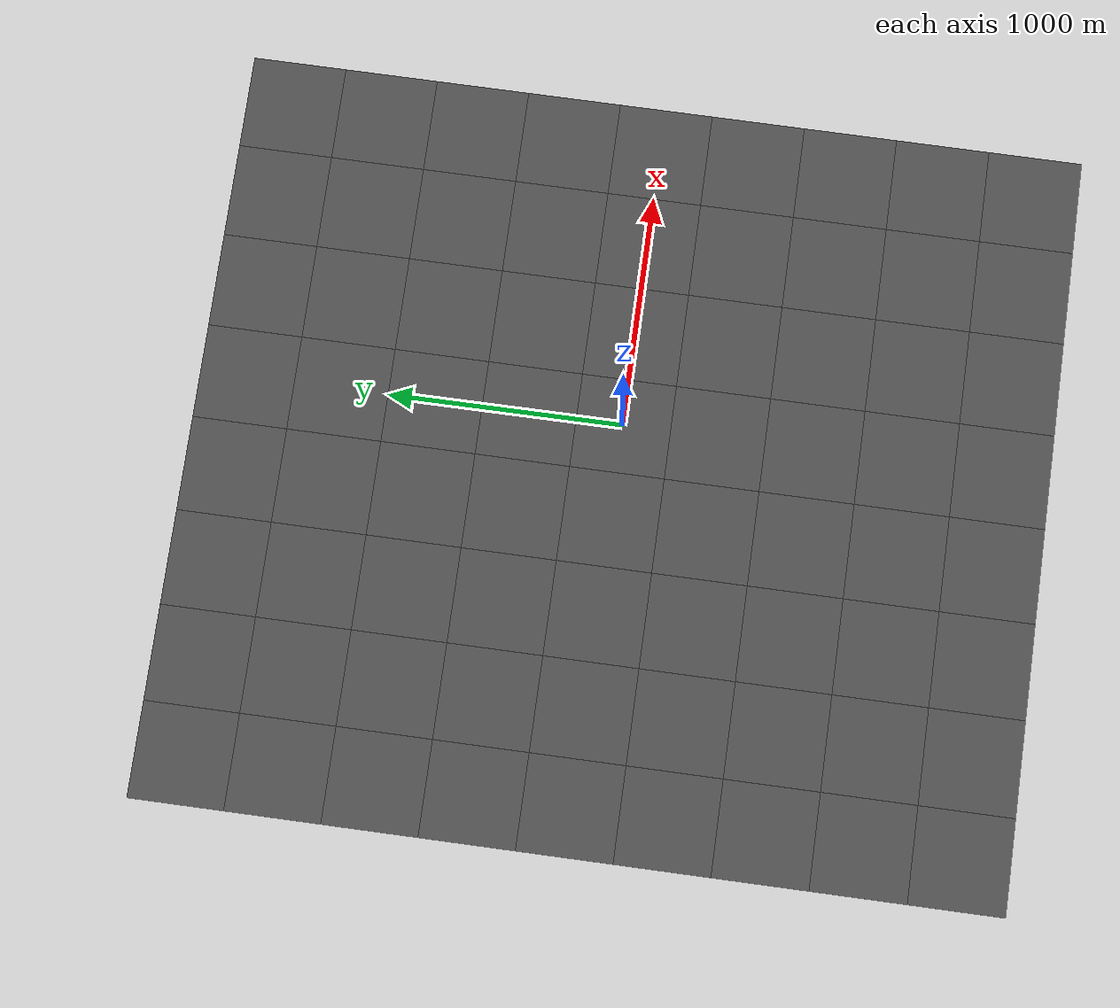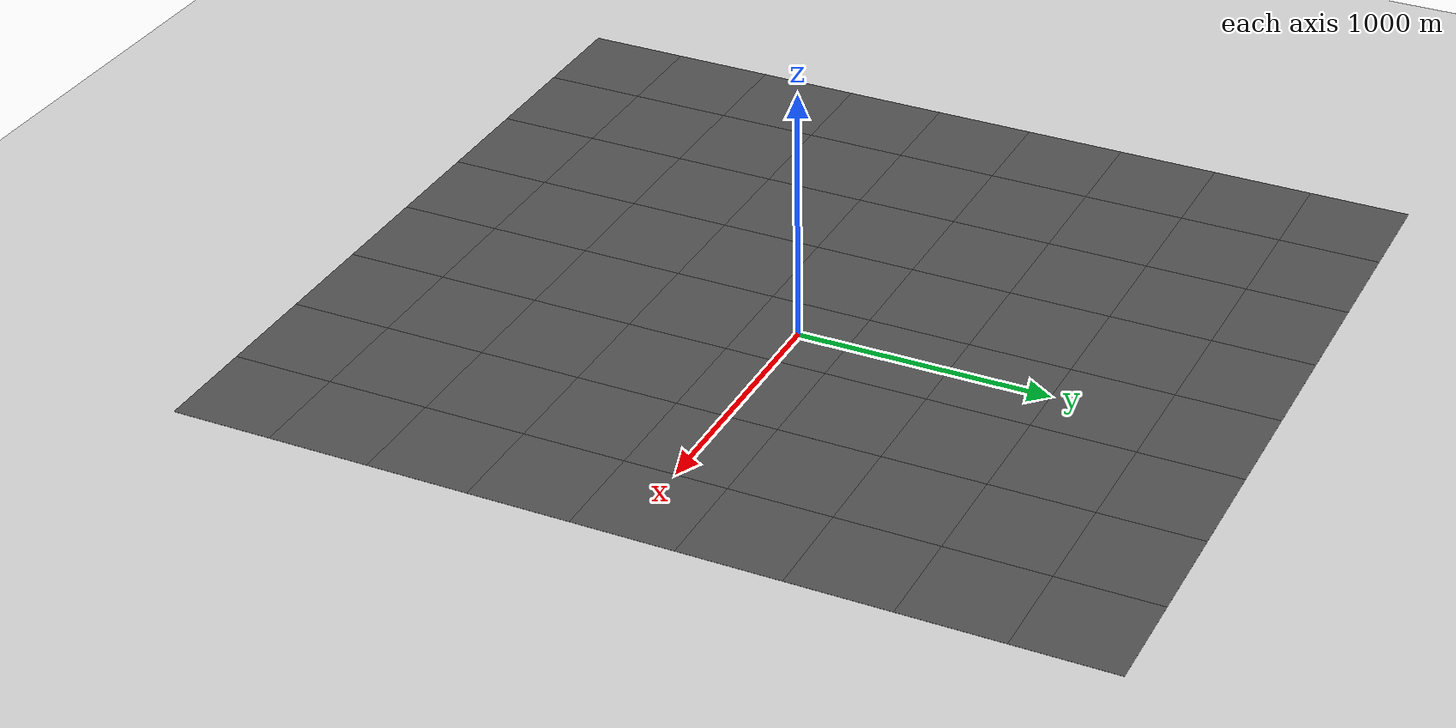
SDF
<sdf version="1.4">
 <world name="default">
  <light name="sun" type="directional">
   <pose>0 0 10 0 -0 0</pose>
   <diffuse>0.8 0.8 0.8 1</diffuse>
   <specular>0.2 0.2 0.2 1</specular>
   <attenuation>
    <range>1000</range>
    <constant>0.9</constant>
    <linear>0.01</linear>
    <quadratic>0.001</quadratic>
   </attenuation>
   <direction>-0.5 0.1 -0.9</direction>
  </light>
  <model name="ground_plane">
   <static>1</static>
   <link name="link">
    <collision name="collision">
     <geometry><plane><normal>0 0 1</normal><size>100 100</size></plane></geometry>
     <surface><friction><ode><mu>100</mu><mu2>50</mu2></ode></friction></surface>
    </collision>
    <visual name="visual">
     <cast_shadows>0</cast_shadows>
     <geometry><plane><normal>0 0 1</normal><size>100 100</size></plane></geometry>
     <material>
      <script><uri>file://media/materials/scripts/gazebo.material</uri><name>Gazebo/Grey</name></script>
     </material>
    </visual>
    <velocity_decay><linear>0</linear><angular>0</angular></velocity_decay>
   </link>
  </model>
  <physics type="ode">
   <max_step_size>0.01</max_step_size>
   <real_time_factor>1</real_time_factor>
   <real_time_update_rate>100</real_time_update_rate>
   <gravity>0 0 -9.8</gravity>
  </physics>
  <scene><ambient>0.4 0.4 0.4 1</ambient><background>0.7 0.7 0.7 1</background><shadows>1</shadows></scene>
  <spherical_coordinates>
   <surface_model>EARTH_WGS84</surface_model>
   <latitude_deg>0</latitude_deg>
   <longitude_deg>0</longitude_deg>
   <elevation>0</elevation>
   <heading_deg>0</heading_deg>
  </spherical_coordinates>
  <model name="asphalt_plane_1">
   <static>1</static>
   <link name="link">
    <collision name="collision">
     <geometry><box><size>400 400 0.6</size></box></geometry>
     <surface><friction><ode><mu>10000</mu><mu2>5000</mu2></ode></friction></surface>
    </collision>
    <visual name="visual">
     <cast_shadows>0</cast_shadows>
     <geometry><box><size>400 400 0.6</size></box></geometry>
     <material>
      <script>
       <uri>model://asphalt_plane/materials/scripts</uri>
       <uri>model://asphalt_plane/materials/textures</uri>
       <name>vrc/asphalt</name>
      </script>
     </material>
    </visual>
    <velocity_decay><linear>0</linear><angular>0</angular></velocity_decay>
   </link>
   <pose>-1600 -1600 0 0 -0 0</pose>
  </model>
  <model name="asphalt_plane_2">
   <static>1</static>
   <link name="link">
    <collision name="collision">
     <geometry><box><size>400 400 0.6</size></box></geometry>
     <surface><friction><ode><mu>10000</mu><mu2>5000</mu2></ode></friction></surface>
    </collision>
    <visual name="visual">
     <cast_shadows>0</cast_shadows>
     <geometry><box><size>400 400 0.6</size></box></geometry>
     <material>
      <script>
       <uri>model://asphalt_plane/materials/scripts</uri>
       <uri>model://asphalt_plane/materials/textures</uri>
       <name>vrc/asphalt</name>
      </script>
     </material>
    </visual>
    <velocity_decay><linear>0</linear><angular>0</angular></velocity_decay>
   </link>
   <pose>-1600 -1200 0 0 -0 0</pose>
  </model>
  <model name="asphalt_plane_3">
   <static>1</static>
   <link name="link">
    <collision name="collision">
     <geometry><box><size>400 400 0.6</size></box></geometry>
     <surface><friction><ode><mu>10000</mu><mu2>5000</mu2></ode></friction></surface>
    </collision>
    <visual name="visual">
     <cast_shadows>0</cast_shadows>
     <geometry><box><size>400 400 0.6</size></box></geometry>
     <material>
      <script>
       <uri>model://asphalt_plane/materials/scripts</uri>
       <uri>model://asphalt_plane/materials/textures</uri>
       <name>vrc/asphalt</name>
      </script>
     </material>
    </visual>
    <velocity_decay><linear>0</linear><angular>0</angular></velocity_decay>
   </link>
   <pose>-1600 -800 0 0 -0 0</pose>
  </model>
  <model name="asphalt_plane_4">
   <static>1</static>
   <link name="link">
    <collision name="collision">
     <geometry><box><size>400 400 0.6</size></box></geometry>
     <surface><friction><ode><mu>10000</mu><mu2>5000</mu2></ode></friction></surface>
    </collision>
    <visual name="visual">
     <cast_shadows>0</cast_shadows>
     <geometry><box><size>400 400 0.6</size></box></geometry>
     <material>
      <script>
       <uri>model://asphalt_plane/materials/scripts</uri>
       <uri>model://asphalt_plane/materials/textures</uri>
       <name>vrc/asphalt</name>
      </script>
     </material>
    </visual>
    <velocity_decay><linear>0</linear><angular>0</angular></velocity_decay>
   </link>
   <pose>-1600 -400 0 0 -0 0</pose>
  </model>
  <model name="asphalt_plane_5">
   <static>1</static>
   <link name="link">
    <collision name="collision">
     <geometry><box><size>400 400 0.6</size></box></geometry>
     <surface><friction><ode><mu>10000</mu><mu2>5000</mu2></ode></friction></surface>
    </collision>
    <visual name="visual">
     <cast_shadows>0</cast_shadows>
     <geometry><box><size>400 400 0.6</size></box></geometry>
     <material>
      <script>
       <uri>model://asphalt_plane/materials/scripts</uri>
       <uri>model://asphalt_plane/materials/textures</uri>
       <name>vrc/asphalt</name>
      </script>
     </material>
    </visual>
    <velocity_decay><linear>0</linear><angular>0</angular></velocity_decay>
   </link>
   <pose>-1600 0 0 0 -0 0</pose>
  </model>
  <model name="asphalt_plane_6">
   <static>1</static>
   <link name="link">
    <collision name="collision">
     <geometry><box><size>400 400 0.6</size></box></geometry>
     <surface><friction><ode><mu>10000</mu><mu2>5000</mu2></ode></friction></surface>
    </collision>
    <visual name="visual">
     <cast_shadows>0</cast_shadows>
     <geometry><box><size>400 400 0.6</size></box></geometry>
     <material>
      <script>
       <uri>model://asphalt_plane/materials/scripts</uri>
       <uri>model://asphalt_plane/materials/textures</uri>
       <name>vrc/asphalt</name>
      </script>
     </material>
    </visual>
    <velocity_decay><linear>0</linear><angular>0</angular></velocity_decay>
   </link>
   <pose>-1600 400 0 0 -0 0</pose>
  </model>
  <model name="asphalt_plane_7">
   <static>1</static>
   <link name="link">
    <collision name="collision">
     <geometry><box><size>400 400 0.6</size></box></geometry>
     <surface><friction><ode><mu>10000</mu><mu2>5000</mu2></ode></friction></surface>
    </collision>
    <visual name="visual">
     <cast_shadows>0</cast_shadows>
     <geometry><box><size>400 400 0.6</size></box></geometry>
     <material>
      <script>
       <uri>model://asphalt_plane/materials/scripts</uri>
       <uri>model://asphalt_plane/materials/textures</uri>
       <name>vrc/asphalt</name>
      </script>
     </material>
    </visual>
    <velocity_decay><linear>0</linear><angular>0</angular></velocity_decay>
   </link>
   <pose>-1600 800 0 0 -0 0</pose>
  </model>
  <model name="asphalt_plane_8">
   <static>1</static>
   <link name="link">
    <collision name="collision">
     <geometry><box><size>400 400 0.6</size></box></geometry>
     <surface><friction><ode><mu>10000</mu><mu2>5000</mu2></ode></friction></surface>
    </collision>
    <visual name="visual">
     <cast_shadows>0</cast_shadows>
     <geometry><box><size>400 400 0.6</size></box></geometry>
     <material>
      <script>
       <uri>model://asphalt_plane/materials/scripts</uri>
       <uri>model://asphalt_plane/materials/textures</uri>
       <name>vrc/asphalt</name>
      </script>
     </material>
    </visual>
    <velocity_decay><linear>0</linear><angular>0</angular></velocity_decay>
   </link>
   <pose>-1600 1200 0 0 -0 0</pose>
  </model>
  <model name="asphalt_plane_9">
   <static>1</static>
   <link name="link">
    <collision name="collision">
     <geometry><box><size>400 400 0.6</size></box></geometry>
     <surface><friction><ode><mu>10000</mu><mu2>5000</mu2></ode></friction></surface>
    </collision>
    <visual name="visual">
     <cast_shadows>0</cast_shadows>
     <geometry><box><size>400 400 0.6</size></box></geometry>
     <material>
      <script>
       <uri>model://asphalt_plane/materials/scripts</uri>
       <uri>model://asphalt_plane/materials/textures</uri>
       <name>vrc/asphalt</name>
      </script>
     </material>
    </visual>
    <velocity_decay><linear>0</linear><angular>0</angular></velocity_decay>
   </link>
   <pose>-1600 1600 0 0 -0 0</pose>
  </model>
  <model name="asphalt_plane_10">
   <static>1</static>
   <link name="link">
    <collision name="collision">
     <geometry><box><size>400 400 0.6</size></box></geometry>
     <surface><friction><ode><mu>10000</mu><mu2>5000</mu2></ode></friction></surface>
    </collision>
    <visual name="visual">
     <cast_shadows>0</cast_shadows>
     <geometry><box><size>400 400 0.6</size></box></geometry>
     <material>
      <script>
       <uri>model://asphalt_plane/materials/scripts</uri>
       <uri>model://asphalt_plane/materials/textures</uri>
       <name>vrc/asphalt</name>
      </script>
     </material>
    </visual>
    <velocity_decay><linear>0</linear><angular>0</angular></velocity_decay>
   </link>
   <pose>-1200 -1600 0 0 -0 0</pose>
  </model>
  <model name="asphalt_plane_11">
   <static>1</static>
   <link name="link">
    <collision name="collision">
     <geometry><box><size>400 400 0.6</size></box></geometry>
     <surface><friction><ode><mu>10000</mu><mu2>5000</mu2></ode></friction></surface>
    </collision>
    <visual name="visual">
     <cast_shadows>0</cast_shadows>
     <geometry><box><size>400 400 0.6</size></box></geometry>
     <material>
      <script>
       <uri>model://asphalt_plane/materials/scripts</uri>
       <uri>model://asphalt_plane/materials/textures</uri>
       <name>vrc/asphalt</name>
      </script>
     </material>
    </visual>
    <velocity_decay><linear>0</linear><angular>0</angular></velocity_decay>
   </link>
   <pose>-1200 -1200 0 0 -0 0</pose>
  </model>
  <model name="asphalt_plane_12">
   <static>1</static>
   <link name="link">
    <collision name="collision">
     <geometry><box><size>400 400 0.6</size></box></geometry>
     <surface><friction><ode><mu>10000</mu><mu2>5000</mu2></ode></friction></surface>
    </collision>
    <visual name="visual">
     <cast_shadows>0</cast_shadows>
     <geometry><box><size>400 400 0.6</size></box></geometry>
     <material>
      <script>
       <uri>model://asphalt_plane/materials/scripts</uri>
       <uri>model://asphalt_plane/materials/textures</uri>
       <name>vrc/asphalt</name>
      </script>
     </material>
    </visual>
    <velocity_decay><linear>0</linear><angular>0</angular></velocity_decay>
   </link>
   <pose>-1200 -800 0 0 -0 0</pose>
  </model>
  <model name="asphalt_plane_13">
   <static>1</static>
   <link name="link">
    <collision name="collision">
     <geometry><box><size>400 400 0.6</size></box></geometry>
     <surface><friction><ode><mu>10000</mu><mu2>5000</mu2></ode></friction></surface>
    </collision>
    <visual name="visual">
     <cast_shadows>0</cast_shadows>
     <geometry><box><size>400 400 0.6</size></box></geometry>
     <material>
      <script>
       <uri>model://asphalt_plane/materials/scripts</uri>
       <uri>model://asphalt_plane/materials/textures</uri>
       <name>vrc/asphalt</name>
      </script>
     </material>
    </visual>
    <velocity_decay><linear>0</linear><angular>0</angular></velocity_decay>
   </link>
   <pose>-1200 -400 0 0 -0 0</pose>
  </model>
  <model name="asphalt_plane_14">
   <static>1</static>
   <link name="link">
    <collision name="collision">
     <geometry><box><size>400 400 0.6</size></box></geometry>
     <surface><friction><ode><mu>10000</mu><mu2>5000</mu2></ode></friction></surface>
    </collision>
    <visual name="visual">
     <cast_shadows>0</cast_shadows>
     <geometry><box><size>400 400 0.6</size></box></geometry>
     <material>
      <script>
       <uri>model://asphalt_plane/materials/scripts</uri>
       <uri>model://asphalt_plane/materials/textures</uri>
       <name>vrc/asphalt</name>
      </script>
     </material>
    </visual>
    <velocity_decay><linear>0</linear><angular>0</angular></velocity_decay>
   </link>
   <pose>-1200 0 0 0 -0 0</pose>
  </model>
  <model name="asphalt_plane_15">
   <static>1</static>
   <link name="link">
    <collision name="collision">
     <geometry><box><size>400 400 0.6</size></box></geometry>
     <surface><friction><ode><mu>10000</mu><mu2>5000</mu2></ode></friction></surface>
    </collision>
    <visual name="visual">
     <cast_shadows>0</cast_shadows>
     <geometry><box><size>400 400 0.6</size></box></geometry>
     <material>
      <script>
       <uri>model://asphalt_plane/materials/scripts</uri>
       <uri>model://asphalt_plane/materials/textures</uri>
       <name>vrc/asphalt</name>
      </script>
     </material>
    </visual>
    <velocity_decay><linear>0</linear><angular>0</angular></velocity_decay>
   </link>
   <pose>-1200 400 0 0 -0 0</pose>
  </model>
  <model name="asphalt_plane_16">
   <static>1</static>
   <link name="link">
    <collision name="collision">
     <geometry><box><size>400 400 0.6</size></box></geometry>
     <surface><friction><ode><mu>10000</mu><mu2>5000</mu2></ode></friction></surface>
    </collision>
    <visual name="visual">
     <cast_shadows>0</cast_shadows>
     <geometry><box><size>400 400 0.6</size></box></geometry>
     <material>
      <script>
       <uri>model://asphalt_plane/materials/scripts</uri>
       <uri>model://asphalt_plane/materials/textures</uri>
       <name>vrc/asphalt</name>
      </script>
     </material>
    </visual>
    <velocity_decay><linear>0</linear><angular>0</angular></velocity_decay>
   </link>
   <pose>-1200 800 0 0 -0 0</pose>
  </model>
  <model name="asphalt_plane_17">
   <static>1</static>
   <link name="link">
    <collision name="collision">
     <geometry><box><size>400 400 0.6</size></box></geometry>
     <surface><friction><ode><mu>10000</mu><mu2>5000</mu2></ode></friction></surface>
    </collision>
    <visual name="visual">
     <cast_shadows>0</cast_shadows>
     <geometry><box><size>400 400 0.6</size></box></geometry>
     <material>
      <script>
       <uri>model://asphalt_plane/materials/scripts</uri>
       <uri>model://asphalt_plane/materials/textures</uri>
       <name>vrc/asphalt</name>
      </script>
     </material>
    </visual>
    <velocity_decay><linear>0</linear><angular>0</angular></velocity_decay>
   </link>
   <pose>-1200 1200 0 0 -0 0</pose>
  </model>
  <model name="asphalt_plane_18">
   <static>1</static>
   <link name="link">
    <collision name="collision">
     <geometry><box><size>400 400 0.6</size></box></geometry>
     <surface><friction><ode><mu>10000</mu><mu2>5000</mu2></ode></friction></surface>
    </collision>
    <visual name="visual">
     <cast_shadows>0</cast_shadows>
     <geometry><box><size>400 400 0.6</size></box></geometry>
     <material>
      <script>
       <uri>model://asphalt_plane/materials/scripts</uri>
       <uri>model://asphalt_plane/materials/textures</uri>
       <name>vrc/asphalt</name>
      </script>
     </material>
    </visual>
    <velocity_decay><linear>0</linear><angular>0</angular></velocity_decay>
   </link>
   <pose>-1200 1600 0 0 -0 0</pose>
  </model>
  <model name="asphalt_plane_19">
   <static>1</static>
   <link name="link">
    <collision name="collision">
     <geometry><box><size>400 400 0.6</size></box></geometry>
     <surface><friction><ode><mu>10000</mu><mu2>5000</mu2></ode></friction></surface>
    </collision>
    <visual name="visual">
     <cast_shadows>0</cast_shadows>
     <geometry><box><size>400 400 0.6</size></box></geometry>
     <material>
      <script>
       <uri>model://asphalt_plane/materials/scripts</uri>
       <uri>model://asphalt_plane/materials/textures</uri>
       <name>vrc/asphalt</name>
      </script>
     </material>
    </visual>
    <velocity_decay><linear>0</linear><angular>0</angular></velocity_decay>
   </link>
   <pose>-800 -1600 0 0 -0 0</pose>
  </model>
  <model name="asphalt_plane_20">
   <static>1</static>
   <link name="link">
    <collision name="collision">
     <geometry><box><size>400 400 0.6</size></box></geometry>
     <surface><friction><ode><mu>10000</mu><mu2>5000</mu2></ode></friction></surface>
    </collision>
    <visual name="visual">
     <cast_shadows>0</cast_shadows>
     <geometry><box><size>400 400 0.6</size></box></geometry>
     <material>
      <script>
       <uri>model://asphalt_plane/materials/scripts</uri>
       <uri>model://asphalt_plane/materials/textures</uri>
       <name>vrc/asphalt</name>
      </script>
     </material>
    </visual>
    <velocity_decay><linear>0</linear><angular>0</angular></velocity_decay>
   </link>
   <pose>-800 -1200 0 0 -0 0</pose>
  </model>
  <model name="asphalt_plane_21">
   <static>1</static>
   <link name="link">
    <collision name="collision">
     <geometry><box><size>400 400 0.6</size></box></geometry>
     <surface><friction><ode><mu>10000</mu><mu2>5000</mu2></ode></friction></surface>
    </collision>
    <visual name="visual">
     <cast_shadows>0</cast_shadows>
     <geometry><box><size>400 400 0.6</size></box></geometry>
     <material>
      <script>
       <uri>model://asphalt_plane/materials/scripts</uri>
       <uri>model://asphalt_plane/materials/textures</uri>
       <name>vrc/asphalt</name>
      </script>
     </material>
    </visual>
    <velocity_decay><linear>0</linear><angular>0</angular></velocity_decay>
   </link>
   <pose>-800 -800 0 0 -0 0</pose>
  </model>
  <model name="asphalt_plane_22">
   <static>1</static>
   <link name="link">
    <collision name="collision">
     <geometry><box><size>400 400 0.6</size></box></geometry>
     <surface><friction><ode><mu>10000</mu><mu2>5000</mu2></ode></friction></surface>
    </collision>
    <visual name="visual">
     <cast_shadows>0</cast_shadows>
     <geometry><box><size>400 400 0.6</size></box></geometry>
     <material>
      <script>
       <uri>model://asphalt_plane/materials/scripts</uri>
       <uri>model://asphalt_plane/materials/textures</uri>
       <name>vrc/asphalt</name>
      </script>
     </material>
    </visual>
    <velocity_decay><linear>0</linear><angular>0</angular></velocity_decay>
   </link>
   <pose>-800 -400 0 0 -0 0</pose>
  </model>
  <model name="asphalt_plane_23">
   <static>1</static>
   <link name="link">
    <collision name="collision">
     <geometry><box><size>400 400 0.6</size></box></geometry>
     <surface><friction><ode><mu>10000</mu><mu2>5000</mu2></ode></friction></surface>
    </collision>
    <visual name="visual">
     <cast_shadows>0</cast_shadows>
     <geometry><box><size>400 400 0.6</size></box></geometry>
     <material>
      <script>
       <uri>model://asphalt_plane/materials/scripts</uri>
       <uri>model://asphalt_plane/materials/textures</uri>
       <name>vrc/asphalt</name>
      </script>
     </material>
    </visual>
    <velocity_decay><linear>0</linear><angular>0</angular></velocity_decay>
   </link>
   <pose>-800 0 0 0 -0 0</pose>
  </model>
  <model name="asphalt_plane_24">
   <static>1</static>
   <link name="link">
    <collision name="collision">
     <geometry><box><size>400 400 0.6</size></box></geometry>
     <surface><friction><ode><mu>10000</mu><mu2>5000</mu2></ode></friction></surface>
    </collision>
    <visual name="visual">
     <cast_shadows>0</cast_shadows>
     <geometry><box><size>400 400 0.6</size></box></geometry>
     <material>
      <script>
       <uri>model://asphalt_plane/materials/scripts</uri>
       <uri>model://asphalt_plane/materials/textures</uri>
       <name>vrc/asphalt</name>
      </script>
     </material>
    </visual>
    <velocity_decay><linear>0</linear><angular>0</angular></velocity_decay>
   </link>
   <pose>-800 400 0 0 -0 0</pose>
  </model>
  <model name="asphalt_plane_25">
   <static>1</static>
   <link name="link">
    <collision name="collision">
     <geometry><box><size>400 400 0.6</size></box></geometry>
     <surface><friction><ode><mu>10000</mu><mu2>5000</mu2></ode></friction></surface>
    </collision>
    <visual name="visual">
     <cast_shadows>0</cast_shadows>
     <geometry><box><size>400 400 0.6</size></box></geometry>
     <material>
      <script>
       <uri>model://asphalt_plane/materials/scripts</uri>
       <uri>model://asphalt_plane/materials/textures</uri>
       <name>vrc/asphalt</name>
      </script>
     </material>
    </visual>
    <velocity_decay><linear>0</linear><angular>0</angular></velocity_decay>
   </link>
   <pose>-800 800 0 0 -0 0</pose>
  </model>
  <model name="asphalt_plane_26">
   <static>1</static>
   <link name="link">
    <collision name="collision">
     <geometry><box><size>400 400 0.6</size></box></geometry>
     <surface><friction><ode><mu>10000</mu><mu2>5000</mu2></ode></friction></surface>
    </collision>
    <visual name="visual">
     <cast_shadows>0</cast_shadows>
     <geometry><box><size>400 400 0.6</size></box></geometry>
     <material>
      <script>
       <uri>model://asphalt_plane/materials/scripts</uri>
       <uri>model://asphalt_plane/materials/textures</uri>
       <name>vrc/asphalt</name>
      </script>
     </material>
    </visual>
    <velocity_decay><linear>0</linear><angular>0</angular></velocity_decay>
   </link>
   <pose>-800 1200 0 0 -0 0</pose>
  </model>
  <model name="asphalt_plane_27">
   <static>1</static>
   <link name="link">
    <collision name="collision">
     <geometry><box><size>400 400 0.6</size></box></geometry>
     <surface><friction><ode><mu>10000</mu><mu2>5000</mu2></ode></friction></surface>
    </collision>
    <visual name="visual">
     <cast_shadows>0</cast_shadows>
     <geometry><box><size>400 400 0.6</size></box></geometry>
     <material>
      <script>
       <uri>model://asphalt_plane/materials/scripts</uri>
       <uri>model://asphalt_plane/materials/textures</uri>
       <name>vrc/asphalt</name>
      </script>
     </material>
    </visual>
    <velocity_decay><linear>0</linear><angular>0</angular></velocity_decay>
   </link>
   <pose>-800 1600 0 0 -0 0</pose>
  </model>
  <model name="asphalt_plane_28">
   <static>1</static>
   <link name="link">
    <collision name="collision">
     <geometry><box><size>400 400 0.6</size></box></geometry>
     <surface><friction><ode><mu>10000</mu><mu2>5000</mu2></ode></friction></surface>
    </collision>
    <visual name="visual">
     <cast_shadows>0</cast_shadows>
     <geometry><box><size>400 400 0.6</size></box></geometry>
     <material>
      <script>
       <uri>model://asphalt_plane/materials/scripts</uri>
       <uri>model://asphalt_plane/materials/textures</uri>
       <name>vrc/asphalt</name>
      </script>
     </material>
    </visual>
    <velocity_decay><linear>0</linear><angular>0</angular></velocity_decay>
   </link>
   <pose>-400 -1600 0 0 -0 0</pose>
  </model>
  <model name="asphalt_plane_29">
   <static>1</static>
   <link name="link">
    <collision name="collision">
     <geometry><box><size>400 400 0.6</size></box></geometry>
     <surface><friction><ode><mu>10000</mu><mu2>5000</mu2></ode></friction></surface>
    </collision>
    <visual name="visual">
     <cast_shadows>0</cast_shadows>
     <geometry><box><size>400 400 0.6</size></box></geometry>
     <material>
      <script>
       <uri>model://asphalt_plane/materials/scripts</uri>
       <uri>model://asphalt_plane/materials/textures</uri>
       <name>vrc/asphalt</name>
      </script>
     </material>
    </visual>
    <velocity_decay><linear>0</linear><angular>0</angular></velocity_decay>
   </link>
   <pose>-400 -1200 0 0 -0 0</pose>
  </model>
  <model name="asphalt_plane_30">
   <static>1</static>
   <link name="link">
    <collision name="collision">
     <geometry><box><size>400 400 0.6</size></box></geometry>
     <surface><friction><ode><mu>10000</mu><mu2>5000</mu2></ode></friction></surface>
    </collision>
    <visual name="visual">
     <cast_shadows>0</cast_shadows>
     <geometry><box><size>400 400 0.6</size></box></geometry>
     <material>
      <script>
       <uri>model://asphalt_plane/materials/scripts</uri>
       <uri>model://asphalt_plane/materials/textures</uri>
       <name>vrc/asphalt</name>
      </script>
     </material>
    </visual>
    <velocity_decay><linear>0</linear><angular>0</angular></velocity_decay>
   </link>
   <pose>-400 -800 0 0 -0 0</pose>
  </model>
  <model name="asphalt_plane_31">
   <static>1</static>
   <link name="link">
    <collision name="collision">
     <geometry><box><size>400 400 0.6</size></box></geometry>
     <surface><friction><ode><mu>10000</mu><mu2>5000</mu2></ode></friction></surface>
    </collision>
    <visual name="visual">
     <cast_shadows>0</cast_shadows>
     <geometry><box><size>400 400 0.6</size></box></geometry>
     <material>
      <script>
       <uri>model://asphalt_plane/materials/scripts</uri>
       <uri>model://asphalt_plane/materials/textures</uri>
       <name>vrc/asphalt</name>
      </script>
     </material>
    </visual>
    <velocity_decay><linear>0</linear><angular>0</angular></velocity_decay>
   </link>
   <pose>-400 -400 0 0 -0 0</pose>
  </model>
  <model name="asphalt_plane_32">
   <static>1</static>
   <link name="link">
    <collision name="collision">
     <geometry><box><size>400 400 0.6</size></box></geometry>
     <surface><friction><ode><mu>10000</mu><mu2>5000</mu2></ode></friction></surface>
    </collision>
    <visual name="visual">
     <cast_shadows>0</cast_shadows>
     <geometry><box><size>400 400 0.6</size></box></geometry>
     <material>
      <script>
       <uri>model://asphalt_plane/materials/scripts</uri>
       <uri>model://asphalt_plane/materials/textures</uri>
       <name>vrc/asphalt</name>
      </script>
     </material>
    </visual>
    <velocity_decay><linear>0</linear><angular>0</angular></velocity_decay>
   </link>
   <pose>-400 0 0 0 -0 0</pose>
  </model>
  <model name="asphalt_plane_33">
   <static>1</static>
   <link name="link">
    <collision name="collision">
     <geometry><box><size>400 400 0.6</size></box></geometry>
     <surface><friction><ode><mu>10000</mu><mu2>5000</mu2></ode></friction></surface>
    </collision>
    <visual name="visual">
     <cast_shadows>0</cast_shadows>
     <geometry><box><size>400 400 0.6</size></box></geometry>
     <material>
      <script>
       <uri>model://asphalt_plane/materials/scripts</uri>
       <uri>model://asphalt_plane/materials/textures</uri>
       <name>vrc/asphalt</name>
      </script>
     </material>
    </visual>
    <velocity_decay><linear>0</linear><angular>0</angular></velocity_decay>
   </link>
   <pose>-400 400 0 0 -0 0</pose>
  </model>
  <model name="asphalt_plane_34">
   <static>1</static>
   <link name="link">
    <collision name="collision">
     <geometry><box><size>400 400 0.6</size></box></geometry>
     <surface><friction><ode><mu>10000</mu><mu2>5000</mu2></ode></friction></surface>
    </collision>
    <visual name="visual">
     <cast_shadows>0</cast_shadows>
     <geometry><box><size>400 400 0.6</size></box></geometry>
     <material>
      <script>
       <uri>model://asphalt_plane/materials/scripts</uri>
       <uri>model://asphalt_plane/materials/textures</uri>
       <name>vrc/asphalt</name>
      </script>
     </material>
    </visual>
    <velocity_decay><linear>0</linear><angular>0</angular></velocity_decay>
   </link>
   <pose>-400 800 0 0 -0 0</pose>
  </model>
  <model name="asphalt_plane_35">
   <static>1</static>
   <link name="link">
    <collision name="collision">
     <geometry><box><size>400 400 0.6</size></box></geometry>
     <surface><friction><ode><mu>10000</mu><mu2>5000</mu2></ode></friction></surface>
    </collision>
    <visual name="visual">
     <cast_shadows>0</cast_shadows>
     <geometry><box><size>400 400 0.6</size></box></geometry>
     <material>
      <script>
       <uri>model://asphalt_plane/materials/scripts</uri>
       <uri>model://asphalt_plane/materials/textures</uri>
       <name>vrc/asphalt</name>
      </script>
     </material>
    </visual>
    <velocity_decay><linear>0</linear><angular>0</angular></velocity_decay>
   </link>
   <pose>-400 1200 0 0 -0 0</pose>
  </model>
  <model name="asphalt_plane_36">
   <static>1</static>
   <link name="link">
    <collision name="collision">
     <geometry><box><size>400 400 0.6</size></box></geometry>
     <surface><friction><ode><mu>10000</mu><mu2>5000</mu2></ode></friction></surface>
    </collision>
    <visual name="visual">
     <cast_shadows>0</cast_shadows>
     <geometry><box><size>400 400 0.6</size></box></geometry>
     <material>
      <script>
       <uri>model://asphalt_plane/materials/scripts</uri>
       <uri>model://asphalt_plane/materials/textures</uri>
       <name>vrc/asphalt</name>
      </script>
     </material>
    </visual>
    <velocity_decay><linear>0</linear><angular>0</angular></velocity_decay>
   </link>
   <pose>-400 1600 0 0 -0 0</pose>
  </model>
  <model name="asphalt_plane_37">
   <static>1</static>
   <link name="link">
    <collision name="collision">
     <geometry><box><size>400 400 0.6</size></box></geometry>
     <surface><friction><ode><mu>10000</mu><mu2>5000</mu2></ode></friction></surface>
    </collision>
    <visual name="visual">
     <cast_shadows>0</cast_shadows>
     <geometry><box><size>400 400 0.6</size></box></geometry>
     <material>
      <script>
       <uri>model://asphalt_plane/materials/scripts</uri>
       <uri>model://asphalt_plane/materials/textures</uri>
       <name>vrc/asphalt</name>
      </script>
     </material>
    </visual>
    <velocity_decay><linear>0</linear><angular>0</angular></velocity_decay>
   </link>
   <pose>0 -1600 0 0 -0 0</pose>
  </model>
  <model name="asphalt_plane_38">
   <static>1</static>
   <link name="link">
    <collision name="collision">
     <geometry><box><size>400 400 0.6</size></box></geometry>
     <surface><friction><ode><mu>10000</mu><mu2>5000</mu2></ode></friction></surface>
    </collision>
    <visual name="visual">
     <cast_shadows>0</cast_shadows>
     <geometry><box><size>400 400 0.6</size></box></geometry>
     <material>
      <script>
       <uri>model://asphalt_plane/materials/scripts</uri>
       <uri>model://asphalt_plane/materials/textures</uri>
       <name>vrc/asphalt</name>
      </script>
     </material>
    </visual>
    <velocity_decay><linear>0</linear><angular>0</angular></velocity_decay>
   </link>
   <pose>0 -1200 0 0 -0 0</pose>
  </model>
  <model name="asphalt_plane_39">
   <static>1</static>
   <link name="link">
    <collision name="collision">
     <geometry><box><size>400 400 0.6</size></box></geometry>
     <surface><friction><ode><mu>10000</mu><mu2>5000</mu2></ode></friction></surface>
    </collision>
    <visual name="visual">
     <cast_shadows>0</cast_shadows>
     <geometry><box><size>400 400 0.6</size></box></geometry>
     <material>
      <script>
       <uri>model://asphalt_plane/materials/scripts</uri>
       <uri>model://asphalt_plane/materials/textures</uri>
       <name>vrc/asphalt</name>
      </script>
     </material>
    </visual>
    <velocity_decay><linear>0</linear><angular>0</angular></velocity_decay>
   </link>
   <pose>0 -800 0 0 -0 0</pose>
  </model>
  <model name="asphalt_plane_40">
   <static>1</static>
   <link name="link">
    <collision name="collision">
     <geometry><box><size>400 400 0.6</size></box></geometry>
     <surface><friction><ode><mu>10000</mu><mu2>5000</mu2></ode></friction></surface>
    </collision>
    <visual name="visual">
     <cast_shadows>0</cast_shadows>
     <geometry><box><size>400 400 0.6</size></box></geometry>
     <material>
      <script>
       <uri>model://asphalt_plane/materials/scripts</uri>
       <uri>model://asphalt_plane/materials/textures</uri>
       <name>vrc/asphalt</name>
      </script>
     </material>
    </visual>
    <velocity_decay><linear>0</linear><angular>0</angular></velocity_decay>
   </link>
   <pose>0 -400 0 0 -0 0</pose>
  </model>
  <model name="asphalt_plane_41">
   <static>1</static>
   <link name="link">
    <collision name="collision">
     <geometry><box><size>400 400 0.6</size></box></geometry>
     <surface><friction><ode><mu>10000</mu><mu2>5000</mu2></ode></friction></surface>
    </collision>
    <visual name="visual">
     <cast_shadows>0</cast_shadows>
     <geometry><box><size>400 400 0.6</size></box></geometry>
     <material>
      <script>
       <uri>model://asphalt_plane/materials/scripts</uri>
       <uri>model://asphalt_plane/materials/textures</uri>
       <name>vrc/asphalt</name>
      </script>
     </material>
    </visual>
    <velocity_decay><linear>0</linear><angular>0</angular></velocity_decay>
   </link>
  </model>
  <model name="asphalt_plane_42">
   <static>1</static>
   <link name="link">
    <collision name="collision">
     <geometry><box><size>400 400 0.6</size></box></geometry>
     <surface><friction><ode><mu>10000</mu><mu2>5000</mu2></ode></friction></surface>
    </collision>
    <visual name="visual">
     <cast_shadows>0</cast_shadows>
     <geometry><box><size>400 400 0.6</size></box></geometry>
     <material>
      <script>
       <uri>model://asphalt_plane/materials/scripts</uri>
       <uri>model://asphalt_plane/materials/textures</uri>
       <name>vrc/asphalt</name>
      </script>
     </material>
    </visual>
    <velocity_decay><linear>0</linear><angular>0</angular></velocity_decay>
   </link>
   <pose>0 400 0 0 -0 0</pose>
  </model>
  <model name="asphalt_plane_43">
   <static>1</static>
   <link name="link">
    <collision name="collision">
     <geometry><box><size>400 400 0.6</size></box></geometry>
     <surface><friction><ode><mu>10000</mu><mu2>5000</mu2></ode></friction></surface>
    </collision>
    <visual name="visual">
     <cast_shadows>0</cast_shadows>
     <geometry><box><size>400 400 0.6</size></box></geometry>
     <material>
      <script>
       <uri>model://asphalt_plane/materials/scripts</uri>
       <uri>model://asphalt_plane/materials/textures</uri>
       <name>vrc/asphalt</name>
      </script>
     </material>
    </visual>
    <velocity_decay><linear>0</linear><angular>0</angular></velocity_decay>
   </link>
   <pose>0 800 0 0 -0 0</pose>
  </model>
  <model name="asphalt_plane_44">
   <static>1</static>
   <link name="link">
    <collision name="collision">
     <geometry><box><size>400 400 0.6</size></box></geometry>
     <surface><friction><ode><mu>10000</mu><mu2>5000</mu2></ode></friction></surface>
    </collision>
    <visual name="visual">
     <cast_shadows>0</cast_shadows>
     <geometry><box><size>400 400 0.6</size></box></geometry>
     <material>
      <script>
       <uri>model://asphalt_plane/materials/scripts</uri>
       <uri>model://asphalt_plane/materials/textures</uri>
       <name>vrc/asphalt</name>
      </script>
     </material>
    </visual>
    <velocity_decay><linear>0</linear><angular>0</angular></velocity_decay>
   </link>
   <pose>0 1200 0 0 -0 0</pose>
  </model>
  <model name="asphalt_plane_45">
   <static>1</static>
   <link name="link">
    <collision name="collision">
     <geometry><box><size>400 400 0.6</size></box></geometry>
     <surface><friction><ode><mu>10000</mu><mu2>5000</mu2></ode></friction></surface>
    </collision>
    <visual name="visual">
     <cast_shadows>0</cast_shadows>
     <geometry><box><size>400 400 0.6</size></box></geometry>
     <material>
      <script>
       <uri>model://asphalt_plane/materials/scripts</uri>
       <uri>model://asphalt_plane/materials/textures</uri>
       <name>vrc/asphalt</name>
      </script>
     </material>
    </visual>
    <velocity_decay><linear>0</linear><angular>0</angular></velocity_decay>
   </link>
   <pose>0 1600 0 0 -0 0</pose>
  </model>
  <model name="asphalt_plane_46">
   <static>1</static>
   <link name="link">
    <collision name="collision">
     <geometry><box><size>400 400 0.6</size></box></geometry>
     <surface><friction><ode><mu>10000</mu><mu2>5000</mu2></ode></friction></surface>
    </collision>
    <visual name="visual">
     <cast_shadows>0</cast_shadows>
     <geometry><box><size>400 400 0.6</size></box></geometry>
     <material>
      <script>
       <uri>model://asphalt_plane/materials/scripts</uri>
       <uri>model://asphalt_plane/materials/textures</uri>
       <name>vrc/asphalt</name>
      </script>
     </material>
    </visual>
    <velocity_decay><linear>0</linear><angular>0</angular></velocity_decay>
   </link>
   <pose>400 -1600 0 0 -0 0</pose>
  </model>
  <model name="asphalt_plane_47">
   <static>1</static>
   <link name="link">
    <collision name="collision">
     <geometry><box><size>400 400 0.6</size></box></geometry>
     <surface><friction><ode><mu>10000</mu><mu2>5000</mu2></ode></friction></surface>
    </collision>
    <visual name="visual">
     <cast_shadows>0</cast_shadows>
     <geometry><box><size>400 400 0.6</size></box></geometry>
     <material>
      <script>
       <uri>model://asphalt_plane/materials/scripts</uri>
       <uri>model://asphalt_plane/materials/textures</uri>
       <name>vrc/asphalt</name>
      </script>
     </material>
    </visual>
    <velocity_decay><linear>0</linear><angular>0</angular></velocity_decay>
   </link>
   <pose>400 -1200 0 0 -0 0</pose>
  </model>
  <model name="asphalt_plane_48">
   <static>1</static>
   <link name="link">
    <collision name="collision">
     <geometry><box><size>400 400 0.6</size></box></geometry>
     <surface><friction><ode><mu>10000</mu><mu2>5000</mu2></ode></friction></surface>
    </collision>
    <visual name="visual">
     <cast_shadows>0</cast_shadows>
     <geometry><box><size>400 400 0.6</size></box></geometry>
     <material>
      <script>
       <uri>model://asphalt_plane/materials/scripts</uri>
       <uri>model://asphalt_plane/materials/textures</uri>
       <name>vrc/asphalt</name>
      </script>
     </material>
    </visual>
    <velocity_decay><linear>0</linear><angular>0</angular></velocity_decay>
   </link>
   <pose>400 -800 0 0 -0 0</pose>
  </model>
  <model name="asphalt_plane_49">
   <static>1</static>
   <link name="link">
    <collision name="collision">
     <geometry><box><size>400 400 0.6</size></box></geometry>
     <surface><friction><ode><mu>10000</mu><mu2>5000</mu2></ode></friction></surface>
    </collision>
    <visual name="visual">
     <cast_shadows>0</cast_shadows>
     <geometry><box><size>400 400 0.6</size></box></geometry>
     <material>
      <script>
       <uri>model://asphalt_plane/materials/scripts</uri>
       <uri>model://asphalt_plane/materials/textures</uri>
       <name>vrc/asphalt</name>
      </script>
     </material>
    </visual>
    <velocity_decay><linear>0</linear><angular>0</angular></velocity_decay>
   </link>
   <pose>400 -400 0 0 -0 0</pose>
  </model>
  <model name="asphalt_plane_50">
   <static>1</static>
   <link name="link">
    <collision name="collision">
     <geometry><box><size>400 400 0.6</size></box></geometry>
     <surface><friction><ode><mu>10000</mu><mu2>5000</mu2></ode></friction></surface>
    </collision>
    <visual name="visual">
     <cast_shadows>0</cast_shadows>
     <geometry><box><size>400 400 0.6</size></box></geometry>
     <material>
      <script>
       <uri>model://asphalt_plane/materials/scripts</uri>
       <uri>model://asphalt_plane/materials/textures</uri>
       <name>vrc/asphalt</name>
      </script>
     </material>
    </visual>
    <velocity_decay><linear>0</linear><angular>0</angular></velocity_decay>
   </link>
   <pose>400 0 0 0 -0 0</pose>
  </model>
  <model name="asphalt_plane_51">
   <static>1</static>
   <link name="link">
    <collision name="collision">
     <geometry><box><size>400 400 0.6</size></box></geometry>
     <surface><friction><ode><mu>10000</mu><mu2>5000</mu2></ode></friction></surface>
    </collision>
    <visual name="visual">
     <cast_shadows>0</cast_shadows>
     <geometry><box><size>400 400 0.6</size></box></geometry>
     <material>
      <script>
       <uri>model://asphalt_plane/materials/scripts</uri>
       <uri>model://asphalt_plane/materials/textures</uri>
       <name>vrc/asphalt</name>
      </script>
     </material>
    </visual>
    <velocity_decay><linear>0</linear><angular>0</angular></velocity_decay>
   </link>
   <pose>400 400 0 0 -0 0</pose>
  </model>
  <model name="asphalt_plane_52">
   <static>1</static>
   <link name="link">
    <collision name="collision">
     <geometry><box><size>400 400 0.6</size></box></geometry>
     <surface><friction><ode><mu>10000</mu><mu2>5000</mu2></ode></friction></surface>
    </collision>
    <visual name="visual">
     <cast_shadows>0</cast_shadows>
     <geometry><box><size>400 400 0.6</size></box></geometry>
     <material>
      <script>
       <uri>model://asphalt_plane/materials/scripts</uri>
       <uri>model://asphalt_plane/materials/textures</uri>
       <name>vrc/asphalt</name>
      </script>
     </material>
    </visual>
    <velocity_decay><linear>0</linear><angular>0</angular></velocity_decay>
   </link>
   <pose>400 800 0 0 -0 0</pose>
  </model>
  <model name="asphalt_plane_53">
   <static>1</static>
   <link name="link">
    <collision name="collision">
     <geometry><box><size>400 400 0.6</size></box></geometry>
     <surface><friction><ode><mu>10000</mu><mu2>5000</mu2></ode></friction></surface>
    </collision>
    <visual name="visual">
     <cast_shadows>0</cast_shadows>
     <geometry><box><size>400 400 0.6</size></box></geometry>
     <material>
      <script>
       <uri>model://asphalt_plane/materials/scripts</uri>
       <uri>model://asphalt_plane/materials/textures</uri>
       <name>vrc/asphalt</name>
      </script>
     </material>
    </visual>
    <velocity_decay><linear>0</linear><angular>0</angular></velocity_decay>
   </link>
   <pose>400 1200 0 0 -0 0</pose>
  </model>
  <model name="asphalt_plane_54">
   <static>1</static>
   <link name="link">
    <collision name="collision">
     <geometry><box><size>400 400 0.6</size></box></geometry>
     <surface><friction><ode><mu>10000</mu><mu2>5000</mu2></ode></friction></surface>
    </collision>
    <visual name="visual">
     <cast_shadows>0</cast_shadows>
     <geometry><box><size>400 400 0.6</size></box></geometry>
     <material>
      <script>
       <uri>model://asphalt_plane/materials/scripts</uri>
       <uri>model://asphalt_plane/materials/textures</uri>
       <name>vrc/asphalt</name>
      </script>
     </material>
    </visual>
    <velocity_decay><linear>0</linear><angular>0</angular></velocity_decay>
   </link>
   <pose>400 1600 0 0 -0 0</pose>
  </model>
  <model name="asphalt_plane_55">
   <static>1</static>
   <link name="link">
    <collision name="collision">
     <geometry><box><size>400 400 0.6</size></box></geometry>
     <surface><friction><ode><mu>10000</mu><mu2>5000</mu2></ode></friction></surface>
    </collision>
    <visual name="visual">
     <cast_shadows>0</cast_shadows>
     <geometry><box><size>400 400 0.6</size></box></geometry>
     <material>
      <script>
       <uri>model://asphalt_plane/materials/scripts</uri>
       <uri>model://asphalt_plane/materials/textures</uri>
       <name>vrc/asphalt</name>
      </script>
     </material>
    </visual>
    <velocity_decay><linear>0</linear><angular>0</angular></velocity_decay>
   </link>
   <pose>800 -1600 0 0 -0 0</pose>
  </model>
  <model name="asphalt_plane_56">
   <static>1</static>
   <link name="link">
    <collision name="collision">
     <geometry><box><size>400 400 0.6</size></box></geometry>
     <surface><friction><ode><mu>10000</mu><mu2>5000</mu2></ode></friction></surface>
    </collision>
    <visual name="visual">
     <cast_shadows>0</cast_shadows>
     <geometry><box><size>400 400 0.6</size></box></geometry>
     <material>
      <script>
       <uri>model://asphalt_plane/materials/scripts</uri>
       <uri>model://asphalt_plane/materials/textures</uri>
       <name>vrc/asphalt</name>
      </script>
     </material>
    </visual>
    <velocity_decay><linear>0</linear><angular>0</angular></velocity_decay>
   </link>
   <pose>800 -1200 0 0 -0 0</pose>
  </model>
  <model name="asphalt_plane_57">
   <static>1</static>
   <link name="link">
    <collision name="collision">
     <geometry><box><size>400 400 0.6</size></box></geometry>
     <surface><friction><ode><mu>10000</mu><mu2>5000</mu2></ode></friction></surface>
    </collision>
    <visual name="visual">
     <cast_shadows>0</cast_shadows>
     <geometry><box><size>400 400 0.6</size></box></geometry>
     <material>
      <script>
       <uri>model://asphalt_plane/materials/scripts</uri>
       <uri>model://asphalt_plane/materials/textures</uri>
       <name>vrc/asphalt</name>
      </script>
     </material>
    </visual>
    <velocity_decay><linear>0</linear><angular>0</angular></velocity_decay>
   </link>
   <pose>800 -800 0 0 -0 0</pose>
  </model>
  <model name="asphalt_plane_58">
   <static>1</static>
   <link name="link">
    <collision name="collision">
     <geometry><box><size>400 400 0.6</size></box></geometry>
     <surface><friction><ode><mu>10000</mu><mu2>5000</mu2></ode></friction></surface>
    </collision>
    <visual name="visual">
     <cast_shadows>0</cast_shadows>
     <geometry><box><size>400 400 0.6</size></box></geometry>
     <material>
      <script>
       <uri>model://asphalt_plane/materials/scripts</uri>
       <uri>model://asphalt_plane/materials/textures</uri>
       <name>vrc/asphalt</name>
      </script>
     </material>
    </visual>
    <velocity_decay><linear>0</linear><angular>0</angular></velocity_decay>
   </link>
   <pose>800 -400 0 0 -0 0</pose>
  </model>
  <model name="asphalt_plane_59">
   <static>1</static>
   <link name="link">
    <collision name="collision">
     <geometry><box><size>400 400 0.6</size></box></geometry>
     <surface><friction><ode><mu>10000</mu><mu2>5000</mu2></ode></friction></surface>
    </collision>
    <visual name="visual">
     <cast_shadows>0</cast_shadows>
     <geometry><box><size>400 400 0.6</size></box></geometry>
     <material>
      <script>
       <uri>model://asphalt_plane/materials/scripts</uri>
       <uri>model://asphalt_plane/materials/textures</uri>
       <name>vrc/asphalt</name>
      </script>
     </material>
    </visual>
    <velocity_decay><linear>0</linear><angular>0</angular></velocity_decay>
   </link>
   <pose>800 0 0 0 -0 0</pose>
  </model>
  <model name="asphalt_plane_60">
   <static>1</static>
   <link name="link">
    <collision name="collision">
     <geometry><box><size>400 400 0.6</size></box></geometry>
     <surface><friction><ode><mu>10000</mu><mu2>5000</mu2></ode></friction></surface>
    </collision>
    <visual name="visual">
     <cast_shadows>0</cast_shadows>
     <geometry><box><size>400 400 0.6</size></box></geometry>
     <material>
      <script>
       <uri>model://asphalt_plane/materials/scripts</uri>
       <uri>model://asphalt_plane/materials/textures</uri>
       <name>vrc/asphalt</name>
      </script>
     </material>
    </visual>
    <velocity_decay><linear>0</linear><angular>0</angular></velocity_decay>
   </link>
   <pose>800 400 0 0 -0 0</pose>
  </model>
  <model name="asphalt_plane_61">
   <static>1</static>
   <link name="link">
    <collision name="collision">
     <geometry><box><size>400 400 0.6</size></box></geometry>
     <surface><friction><ode><mu>10000</mu><mu2>5000</mu2></ode></friction></surface>
    </collision>
    <visual name="visual">
     <cast_shadows>0</cast_shadows>
     <geometry><box><size>400 400 0.6</size></box></geometry>
     <material>
      <script>
       <uri>model://asphalt_plane/materials/scripts</uri>
       <uri>model://asphalt_plane/materials/textures</uri>
       <name>vrc/asphalt</name>
      </script>
     </material>
    </visual>
    <velocity_decay><linear>0</linear><angular>0</angular></velocity_decay>
   </link>
   <pose>800 800 0 0 -0 0</pose>
  </model>
  <model name="asphalt_plane_62">
   <static>1</static>
   <link name="link">
    <collision name="collision">
     <geometry><box><size>400 400 0.6</size></box></geometry>
     <surface><friction><ode><mu>10000</mu><mu2>5000</mu2></ode></friction></surface>
    </collision>
    <visual name="visual">
     <cast_shadows>0</cast_shadows>
     <geometry><box><size>400 400 0.6</size></box></geometry>
     <material>
      <script>
       <uri>model://asphalt_plane/materials/scripts</uri>
       <uri>model://asphalt_plane/materials/textures</uri>
       <name>vrc/asphalt</name>
      </script>
     </material>
    </visual>
    <velocity_decay><linear>0</linear><angular>0</angular></velocity_decay>
   </link>
   <pose>800 1200 0 0 -0 0</pose>
  </model>
  <model name="asphalt_plane_63">
   <static>1</static>
   <link name="link">
    <collision name="collision">
     <geometry><box><size>400 400 0.6</size></box></geometry>
     <surface><friction><ode><mu>10000</mu><mu2>5000</mu2></ode></friction></surface>
    </collision>
    <visual name="visual">
     <cast_shadows>0</cast_shadows>
     <geometry><box><size>400 400 0.6</size></box></geometry>
     <material>
      <script>
       <uri>model://asphalt_plane/materials/scripts</uri>
       <uri>model://asphalt_plane/materials/textures</uri>
       <name>vrc/asphalt</name>
      </script>
     </material>
    </visual>
    <velocity_decay><linear>0</linear><angular>0</angular></velocity_decay>
   </link>
   <pose>800 1600 0 0 -0 0</pose>
  </model>
  <model name="asphalt_plane_64">
   <static>1</static>
   <link name="link">
    <collision name="collision">
     <geometry><box><size>400 400 0.6</size></box></geometry>
     <surface><friction><ode><mu>10000</mu><mu2>5000</mu2></ode></friction></surface>
    </collision>
    <visual name="visual">
     <cast_shadows>0</cast_shadows>
     <geometry><box><size>400 400 0.6</size></box></geometry>
     <material>
      <script>
       <uri>model://asphalt_plane/materials/scripts</uri>
       <uri>model://asphalt_plane/materials/textures</uri>
       <name>vrc/asphalt</name>
      </script>
     </material>
    </visual>
    <velocity_decay><linear>0</linear><angular>0</angular></velocity_decay>
   </link>
   <pose>1200 -1600 0 0 -0 0</pose>
  </model>
  <model name="asphalt_plane_65">
   <static>1</static>
   <link name="link">
    <collision name="collision">
     <geometry><box><size>400 400 0.6</size></box></geometry>
     <surface><friction><ode><mu>10000</mu><mu2>5000</mu2></ode></friction></surface>
    </collision>
    <visual name="visual">
     <cast_shadows>0</cast_shadows>
     <geometry><box><size>400 400 0.6</size></box></geometry>
     <material>
      <script>
       <uri>model://asphalt_plane/materials/scripts</uri>
       <uri>model://asphalt_plane/materials/textures</uri>
       <name>vrc/asphalt</name>
      </script>
     </material>
    </visual>
    <velocity_decay><linear>0</linear><angular>0</angular></velocity_decay>
   </link>
   <pose>1200 -1200 0 0 -0 0</pose>
  </model>
  <model name="asphalt_plane_66">
   <static>1</static>
   <link name="link">
    <collision name="collision">
     <geometry><box><size>400 400 0.6</size></box></geometry>
     <surface><friction><ode><mu>10000</mu><mu2>5000</mu2></ode></friction></surface>
    </collision>
    <visual name="visual">
     <cast_shadows>0</cast_shadows>
     <geometry><box><size>400 400 0.6</size></box></geometry>
     <material>
      <script>
       <uri>model://asphalt_plane/materials/scripts</uri>
       <uri>model://asphalt_plane/materials/textures</uri>
       <name>vrc/asphalt</name>
      </script>
     </material>
    </visual>
    <velocity_decay><linear>0</linear><angular>0</angular></velocity_decay>
   </link>
   <pose>1200 -800 0 0 -0 0</pose>
  </model>
  <model name="asphalt_plane_67">
   <static>1</static>
   <link name="link">
    <collision name="collision">
     <geometry><box><size>400 400 0.6</size></box></geometry>
     <surface><friction><ode><mu>10000</mu><mu2>5000</mu2></ode></friction></surface>
    </collision>
    <visual name="visual">
     <cast_shadows>0</cast_shadows>
     <geometry><box><size>400 400 0.6</size></box></geometry>
     <material>
      <script>
       <uri>model://asphalt_plane/materials/scripts</uri>
       <uri>model://asphalt_plane/materials/textures</uri>
       <name>vrc/asphalt</name>
      </script>
     </material>
    </visual>
    <velocity_decay><linear>0</linear><angular>0</angular></velocity_decay>
   </link>
   <pose>1200 -400 0 0 -0 0</pose>
  </model>
  <model name="asphalt_plane_68">
   <static>1</static>
   <link name="link">
    <collision name="collision">
     <geometry><box><size>400 400 0.6</size></box></geometry>
     <surface><friction><ode><mu>10000</mu><mu2>5000</mu2></ode></friction></surface>
    </collision>
    <visual name="visual">
     <cast_shadows>0</cast_shadows>
     <geometry><box><size>400 400 0.6</size></box></geometry>
     <material>
      <script>
       <uri>model://asphalt_plane/materials/scripts</uri>
       <uri>model://asphalt_plane/materials/textures</uri>
       <name>vrc/asphalt</name>
      </script>
     </material>
    </visual>
    <velocity_decay><linear>0</linear><angular>0</angular></velocity_decay>
   </link>
   <pose>1200 0 0 0 -0 0</pose>
  </model>
  <model name="asphalt_plane_69">
   <static>1</static>
   <link name="link">
    <collision name="collision">
     <geometry><box><size>400 400 0.6</size></box></geometry>
     <surface><friction><ode><mu>10000</mu><mu2>5000</mu2></ode></friction></surface>
    </collision>
    <visual name="visual">
     <cast_shadows>0</cast_shadows>
     <geometry><box><size>400 400 0.6</size></box></geometry>
     <material>
      <script>
       <uri>model://asphalt_plane/materials/scripts</uri>
       <uri>model://asphalt_plane/materials/textures</uri>
       <name>vrc/asphalt</name>
      </script>
     </material>
    </visual>
    <velocity_decay><linear>0</linear><angular>0</angular></velocity_decay>
   </link>
   <pose>1200 400 0 0 -0 0</pose>
  </model>
  <model name="asphalt_plane_70">
   <static>1</static>
   <link name="link">
    <collision name="collision">
     <geometry><box><size>400 400 0.6</size></box></geometry>
     <surface><friction><ode><mu>10000</mu><mu2>5000</mu2></ode></friction></surface>
    </collision>
    <visual name="visual">
     <cast_shadows>0</cast_shadows>
     <geometry><box><size>400 400 0.6</size></box></geometry>
     <material>
      <script>
       <uri>model://asphalt_plane/materials/scripts</uri>
       <uri>model://asphalt_plane/materials/textures</uri>
       <name>vrc/asphalt</name>
      </script>
     </material>
    </visual>
    <velocity_decay><linear>0</linear><angular>0</angular></velocity_decay>
   </link>
   <pose>1200 800 0 0 -0 0</pose>
  </model>
  <model name="asphalt_plane_71">
   <static>1</static>
   <link name="link">
    <collision name="collision">
     <geometry><box><size>400 400 0.6</size></box></geometry>
     <surface><friction><ode><mu>10000</mu><mu2>5000</mu2></ode></friction></surface>
    </collision>
    <visual name="visual">
     <cast_shadows>0</cast_shadows>
     <geometry><box><size>400 400 0.6</size></box></geometry>
     <material>
      <script>
       <uri>model://asphalt_plane/materials/scripts</uri>
       <uri>model://asphalt_plane/materials/textures</uri>
       <name>vrc/asphalt</name>
      </script>
     </material>
    </visual>
    <velocity_decay><linear>0</linear><angular>0</angular></velocity_decay>
   </link>
   <pose>1200 1200 0 0 -0 0</pose>
  </model>
  <model name="asphalt_plane_72">
   <static>1</static>
   <link name="link">
    <collision name="collision">
     <geometry><box><size>400 400 0.6</size></box></geometry>
     <surface><friction><ode><mu>10000</mu><mu2>5000</mu2></ode></friction></surface>
    </collision>
    <visual name="visual">
     <cast_shadows>0</cast_shadows>
     <geometry><box><size>400 400 0.6</size></box></geometry>
     <material>
      <script>
       <uri>model://asphalt_plane/materials/scripts</uri>
       <uri>model://asphalt_plane/materials/textures</uri>
       <name>vrc/asphalt</name>
      </script>
     </material>
    </visual>
    <velocity_decay><linear>0</linear><angular>0</angular></velocity_decay>
   </link>
   <pose>1200 1600 0 0 -0 0</pose>
  </model>
 </world>
</sdf>
